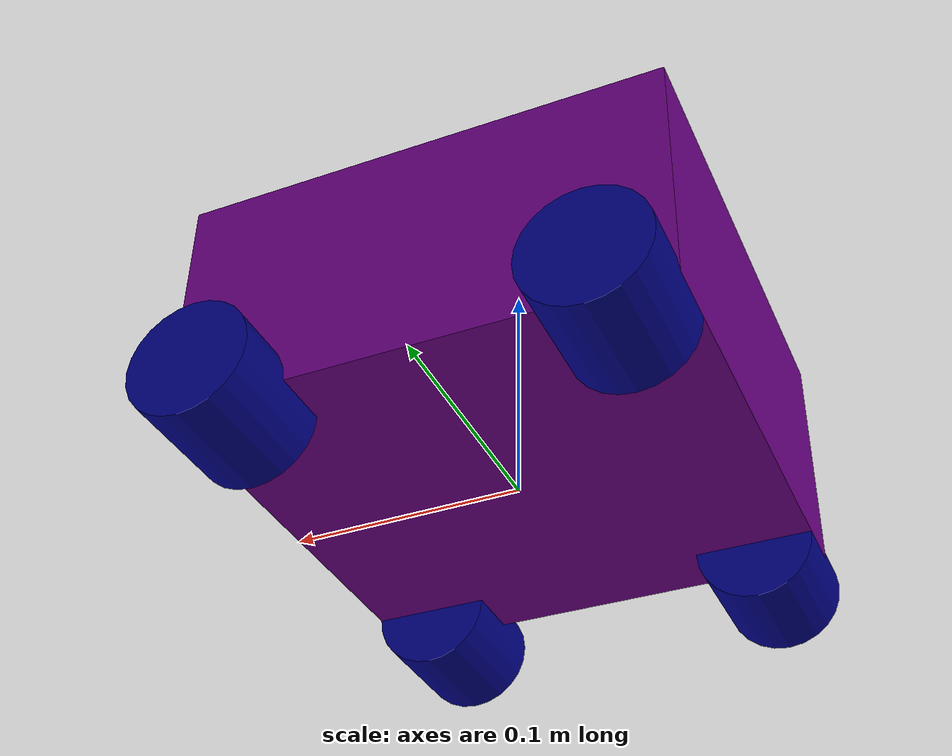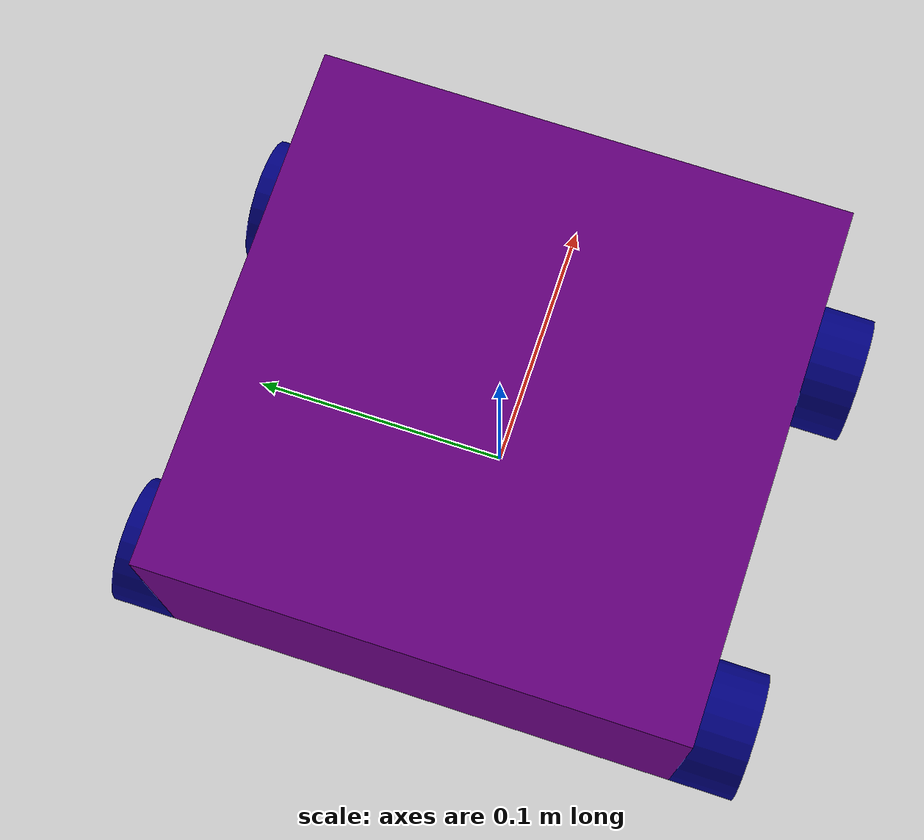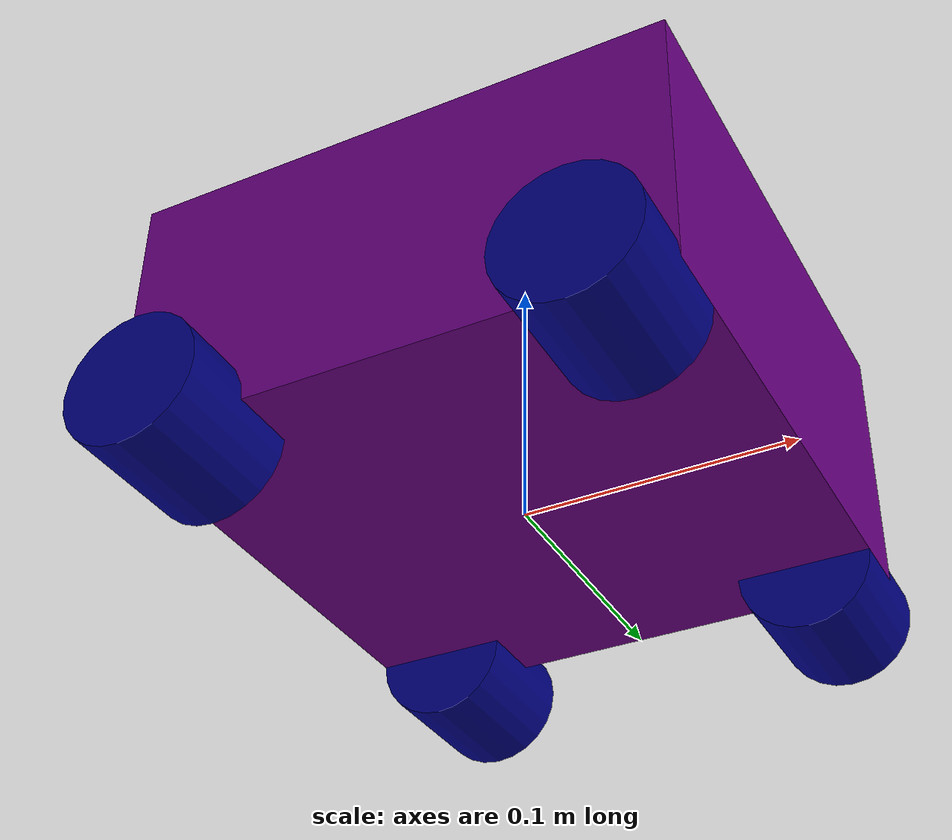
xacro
<?xml version="1.0" encoding="UTF-8"?>
<robot xmlns:xacro="http://www.ros.org/wiki/xacro">

    <xacro:include filename="inertial_macros.xacro"/>

    <material name="white">
        <color rgba="1.0 1.0 1.0 1.0"/>
    </material>

    <material name="purple">
        <color rgba="0.4 0.0 0.5 1.0"/>
    </material>

    <material name="blue">
        <color rgba="0.0 0.0 0.5 1.0"/>
    </material>

    <material name="black">
        <color rgba="0.0 0.0 0.0 1.0"/>
    </material>

    <!-- BASE LINK -->

    <link name="base_link"></link>

    <!-- ChASSIS LINK -->

    <joint name="chassis_joint" type="fixed">
        <parent link="base_link"/>
        <child link="chassis"/>
        <origin xyz="-0.1 0.0 0.0"/>
    </joint>

    <link name="chassis">
        <visual>
            <origin xyz="0.1 0.0 0.05"/>
            <geometry>
                <box size="0.2 0.2 0.1"/>
            </geometry>
            <material name="purple"/>
        </visual>
        <collision>
            <origin xyz="0.1 0.0 0.05"/>
            <geometry>
                <box size="0.2 0.2 0.1"/>
            </geometry>
        </collision>
        <xacro:inertial_box mass="0.5" x="0.2" y="0.2" z="0.1">
            <origin xyz="0.1 0.0 0.05" rpy="0.0 0.0 0.0"/>
        </xacro:inertial_box>
    </link>

    <gazebo reference="chassis">
        <material>Gazebo/Purple</material>
    </gazebo>

    <!-- FRONT LEFT WHEEL LINK -->

    <joint name="fl_wheel_joint" type="continuous">
        <parent link="chassis"/>
        <child link="fl_wheel"/>
        <origin xyz="0.175 0.1 0.0" rpy="-${pi/2} 0.0 0.0"/>
        <axis xyz="0.0 0.0 1.0"/>
    </joint>

    <link name="fl_wheel">
        <visual>
            <origin xyz="0.0 0.0 0.0"/>
            <geometry>
                <cylinder radius="0.025" length="0.05"/>
            </geometry>
            <material name="blue"/>
        </visual>
        <collision>
            <origin xyz="0.0 0.0 0.0"/>
            <geometry>
                <cylinder radius="0.025" length="0.05"/>
            </geometry>
        </collision>
        <xacro:inertial_cylinder mass="0.1" length="0.05" radius="0.025">
            <origin xyz="0.0 0.0 0.05" rpy="0.0 0.0 0.0"/>
        </xacro:inertial_cylinder>
    </link>

    <gazebo reference="fl_wheel">
        <material>Gazebo/Blue</material>
    </gazebo>

    <!-- FRONT RIGHT WHEEL LINK -->

    <joint name="fr_wheel_joint" type="continuous">
        <parent link="chassis"/>
        <child link="fr_wheel"/>
        <origin xyz="0.175 -0.1 0.0" rpy="${pi/2} 0.0 0.0"/>
        <axis xyz="0.0 0.0 1.0"/>
    </joint>

    <link name="fr_wheel">
        <visual>
            <origin xyz="0.0 0.0 0.0"/>
            <geometry>
                <cylinder radius="0.025" length="0.05"/>
            </geometry>
            <material name="blue"/>
        </visual>
        <collision>
            <origin xyz="0.0 0.0 0.0"/>
            <geometry>
                <cylinder radius="0.025" length="0.05"/>
            </geometry>
        </collision>
        <xacro:inertial_cylinder mass="0.1" length="0.05" radius="0.025">
            <origin xyz="0.0 0.0 0.05" rpy="0.0 0.0 0.0"/>
        </xacro:inertial_cylinder>
    </link>

    <gazebo reference="fr_wheel">
        <material>Gazebo/Blue</material>
    </gazebo>

    <!-- BACK LEFT WHEEL LINK -->

    <joint name="bl_wheel_joint" type="continuous">
        <parent link="chassis"/>
        <child link="bl_wheel"/>
        <origin xyz="0.025 0.1 0.0" rpy="-${pi/2} 0.0 0.0"/>
        <axis xyz="0.0 0.0 1.0"/>
    </joint>

    <link name="bl_wheel">
        <visual>
            <origin xyz="0.0 0.0 0.0"/>
            <geometry>
                <cylinder radius="0.025" length="0.05"/>
            </geometry>
            <material name="blue"/>
        </visual>
        <collision>
            <origin xyz="0.0 0.0 0.0"/>
            <geometry>
                <cylinder radius="0.025" length="0.05"/>
            </geometry>
        </collision>
        <xacro:inertial_cylinder mass="0.1" length="0.05" radius="0.025">
            <origin xyz="0.0 0.0 0.05" rpy="0.0 0.0 0.0"/>
        </xacro:inertial_cylinder>
    </link>

    <gazebo reference="bl_wheel">
        <material>Gazebo/Blue</material>
    </gazebo>

    <!-- BACK RIGHT WHEEL LINK -->

    <joint name="br_wheel_joint" type="continuous">
        <parent link="chassis"/>
        <child link="br_wheel"/>
        <origin xyz="0.025 -0.1 0.0" rpy="${pi/2} 0.0 0.0"/>
        <axis xyz="0.0 0.0 1.0"/>
    </joint>

    <link name="br_wheel">
        <visual>
            <origin xyz="0.0 0.0 0.0"/>
            <geometry>
                <cylinder radius="0.025" length="0.05"/>
            </geometry>
            <material name="blue"/>
        </visual>
        <collsion>
            <origin xyz="0.0 0.0 0.0"/>
            <geometry>
                <cylinder radius="0.025" length="0.05"/>
            </geometry>
        </collsion>
        <xacro:inertial_cylinder mass="0.1" length="0.05" radius="0.025">
            <origin xyz="0.0 0.0 0.05" rpy="0.0 0.0 0.0"/>
        </xacro:inertial_cylinder>
    </link>

    <gazebo reference="br_wheel">
        <material>Gazebo/Blue</material>
    </gazebo>

</robot>
